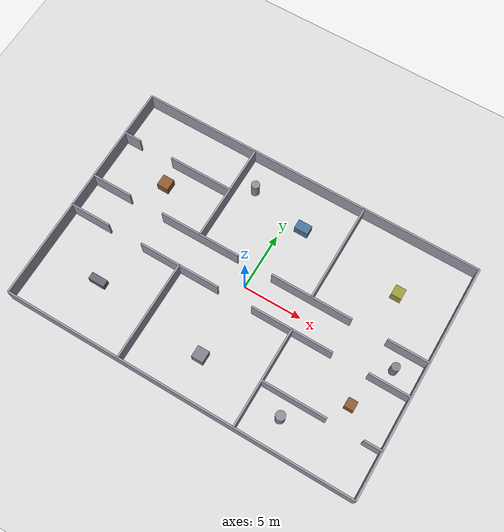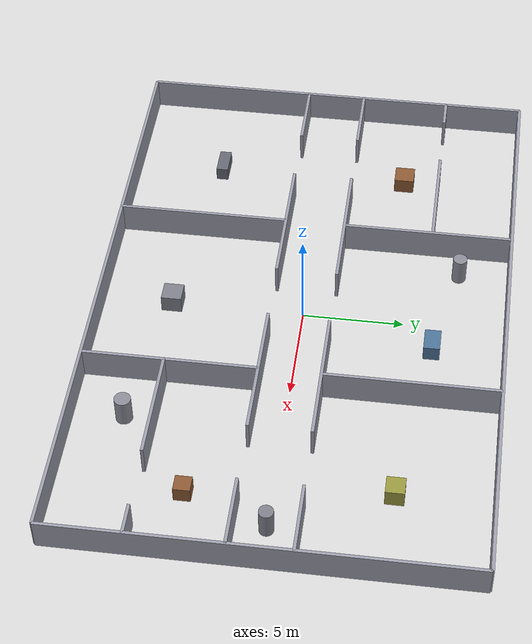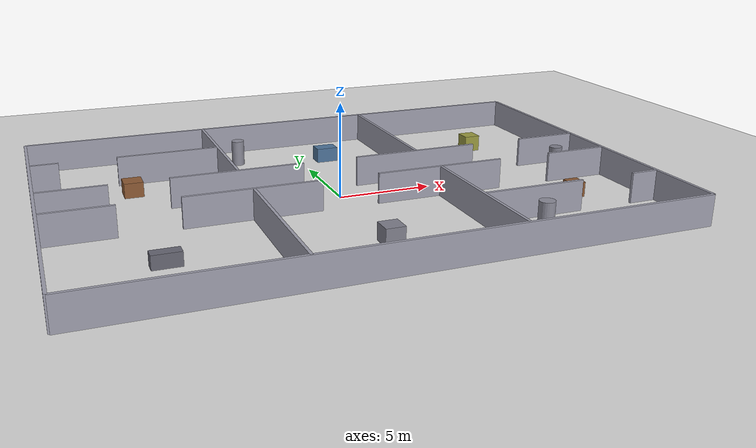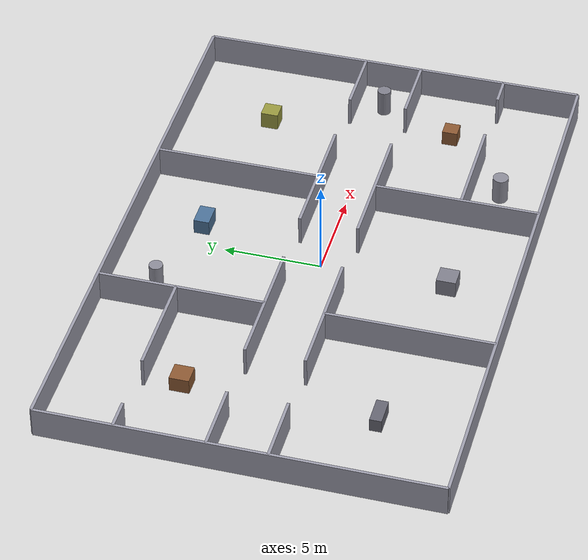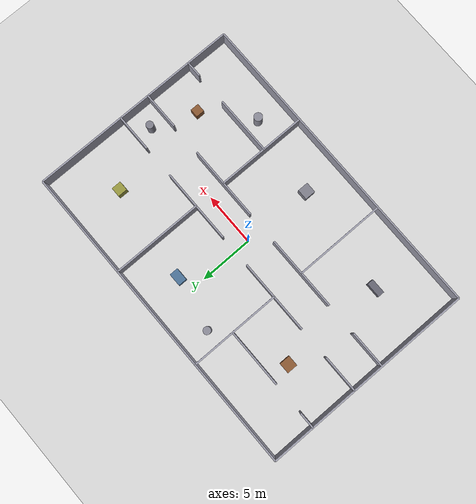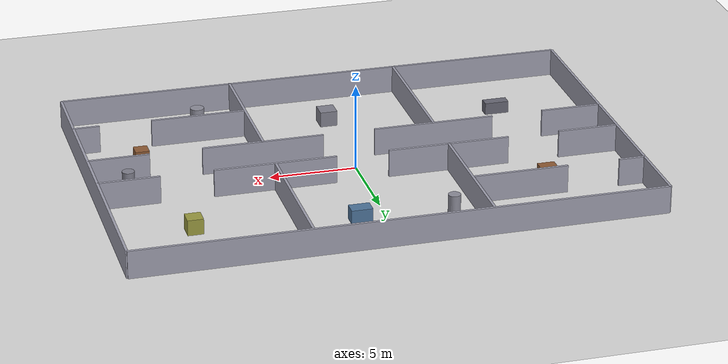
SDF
<?xml version="1.0" ?>
<sdf version="1.10">
  <world name="facility">
    <physics name="1ms" type="ignored"><max_step_size>0.002</max_step_size><real_time_factor>1.0</real_time_factor></physics>
    <plugin filename="gz-sim-physics-system"           name="gz::sim::systems::Physics"/>
    <plugin filename="gz-sim-sensors-system"           name="gz::sim::systems::Sensors"><render_engine>ogre2</render_engine></plugin>
    <plugin filename="gz-sim-scene-broadcaster-system" name="gz::sim::systems::SceneBroadcaster"/>
    <plugin filename="gz-sim-user-commands-system"     name="gz::sim::systems::UserCommands"/>
    <plugin filename="gz-sim-contact-system"           name="gz::sim::systems::Contact"/>
    <plugin filename="gz-sim-imu-system"               name="gz::sim::systems::Imu"/>

    <scene><ambient>0.45 0.45 0.45 1</ambient><background>0.7 0.7 0.8 1</background><grid>false</grid></scene>
    <light type="directional" name="sun"><cast_shadows>true</cast_shadows><pose>0 0 12 0 0 0</pose>
      <diffuse>0.9 0.9 0.9 1</diffuse><specular>0.2 0.2 0.2 1</specular><direction>-0.4 0.3 -0.9</direction></light>

    <model name="ground_plane"><static>true</static><link name="link">
      <collision name="c"><geometry><plane><normal>0 0 1</normal><size>120 120</size></plane></geometry></collision>
      <visual name="v"><geometry><plane><normal>0 0 1</normal><size>120 120</size></plane></geometry>
        <material><ambient>0.8 0.8 0.8 1</ambient><diffuse>0.85 0.85 0.85 1</diffuse></material></visual>
    </link></model>

    <model name="facility"><static>true</static><link name="structure">
        <collision name="w0_c"><pose>0 10 0.8 0 0 0</pose><geometry><box><size>30 0.15 1.6</size></box></geometry></collision>
        <visual name="w0_v"><pose>0 10 0.8 0 0 0</pose><geometry><box><size>30 0.15 1.6</size></box></geometry><material><ambient>0.62 0.62 0.68 1</ambient><diffuse>0.62 0.62 0.68 1</diffuse></material></visual>
        <collision name="w1_c"><pose>0 -10 0.8 0 0 0</pose><geometry><box><size>30 0.15 1.6</size></box></geometry></collision>
        <visual name="w1_v"><pose>0 -10 0.8 0 0 0</pose><geometry><box><size>30 0.15 1.6</size></box></geometry><material><ambient>0.62 0.62 0.68 1</ambient><diffuse>0.62 0.62 0.68 1</diffuse></material></visual>
        <collision name="w2_c"><pose>15 0 0.8 0 0 0</pose><geometry><box><size>0.15 20 1.6</size></box></geometry></collision>
        <visual name="w2_v"><pose>15 0 0.8 0 0 0</pose><geometry><box><size>0.15 20 1.6</size></box></geometry><material><ambient>0.62 0.62 0.68 1</ambient><diffuse>0.62 0.62 0.68 1</diffuse></material></visual>
        <collision name="w3_c"><pose>-15 0 0.8 0 0 0</pose><geometry><box><size>0.15 20 1.6</size></box></geometry></collision>
        <visual name="w3_v"><pose>-15 0 0.8 0 0 0</pose><geometry><box><size>0.15 20 1.6</size></box></geometry><material><ambient>0.62 0.62 0.68 1</ambient><diffuse>0.62 0.62 0.68 1</diffuse></material></visual>
        <collision name="w4_c"><pose>-13.25 1.5 0.8 0 0 0</pose><geometry><box><size>3.5 0.15 1.6</size></box></geometry></collision>
        <visual name="w4_v"><pose>-13.25 1.5 0.8 0 0 0</pose><geometry><box><size>3.5 0.15 1.6</size></box></geometry><material><ambient>0.62 0.62 0.68 1</ambient><diffuse>0.62 0.62 0.68 1</diffuse></material></visual>
        <collision name="w5_c"><pose>-5.0 1.5 0.8 0 0 0</pose><geometry><box><size>7.0 0.15 1.6</size></box></geometry></collision>
        <visual name="w5_v"><pose>-5.0 1.5 0.8 0 0 0</pose><geometry><box><size>7.0 0.15 1.6</size></box></geometry><material><ambient>0.62 0.62 0.68 1</ambient><diffuse>0.62 0.62 0.68 1</diffuse></material></visual>
        <collision name="w6_c"><pose>5.0 1.5 0.8 0 0 0</pose><geometry><box><size>7.0 0.15 1.6</size></box></geometry></collision>
        <visual name="w6_v"><pose>5.0 1.5 0.8 0 0 0</pose><geometry><box><size>7.0 0.15 1.6</size></box></geometry><material><ambient>0.62 0.62 0.68 1</ambient><diffuse>0.62 0.62 0.68 1</diffuse></material></visual>
        <collision name="w7_c"><pose>13.25 1.5 0.8 0 0 0</pose><geometry><box><size>3.5 0.15 1.6</size></box></geometry></collision>
        <visual name="w7_v"><pose>13.25 1.5 0.8 0 0 0</pose><geometry><box><size>3.5 0.15 1.6</size></box></geometry><material><ambient>0.62 0.62 0.68 1</ambient><diffuse>0.62 0.62 0.68 1</diffuse></material></visual>
        <collision name="w8_c"><pose>-13.25 -1.5 0.8 0 0 0</pose><geometry><box><size>3.5 0.15 1.6</size></box></geometry></collision>
        <visual name="w8_v"><pose>-13.25 -1.5 0.8 0 0 0</pose><geometry><box><size>3.5 0.15 1.6</size></box></geometry><material><ambient>0.62 0.62 0.68 1</ambient><diffuse>0.62 0.62 0.68 1</diffuse></material></visual>
        <collision name="w9_c"><pose>-5.0 -1.5 0.8 0 0 0</pose><geometry><box><size>7.0 0.15 1.6</size></box></geometry></collision>
        <visual name="w9_v"><pose>-5.0 -1.5 0.8 0 0 0</pose><geometry><box><size>7.0 0.15 1.6</size></box></geometry><material><ambient>0.62 0.62 0.68 1</ambient><diffuse>0.62 0.62 0.68 1</diffuse></material></visual>
        <collision name="w10_c"><pose>5.0 -1.5 0.8 0 0 0</pose><geometry><box><size>7.0 0.15 1.6</size></box></geometry></collision>
        <visual name="w10_v"><pose>5.0 -1.5 0.8 0 0 0</pose><geometry><box><size>7.0 0.15 1.6</size></box></geometry><material><ambient>0.62 0.62 0.68 1</ambient><diffuse>0.62 0.62 0.68 1</diffuse></material></visual>
        <collision name="w11_c"><pose>13.25 -1.5 0.8 0 0 0</pose><geometry><box><size>3.5 0.15 1.6</size></box></geometry></collision>
        <visual name="w11_v"><pose>13.25 -1.5 0.8 0 0 0</pose><geometry><box><size>3.5 0.15 1.6</size></box></geometry><material><ambient>0.62 0.62 0.68 1</ambient><diffuse>0.62 0.62 0.68 1</diffuse></material></visual>
        <collision name="w12_c"><pose>-5 5.75 0.8 0 0 0</pose><geometry><box><size>0.15 8.5 1.6</size></box></geometry></collision>
        <visual name="w12_v"><pose>-5 5.75 0.8 0 0 0</pose><geometry><box><size>0.15 8.5 1.6</size></box></geometry><material><ambient>0.62 0.62 0.68 1</ambient><diffuse>0.62 0.62 0.68 1</diffuse></material></visual>
        <collision name="w13_c"><pose>5 5.75 0.8 0 0 0</pose><geometry><box><size>0.15 8.5 1.6</size></box></geometry></collision>
        <visual name="w13_v"><pose>5 5.75 0.8 0 0 0</pose><geometry><box><size>0.15 8.5 1.6</size></box></geometry><material><ambient>0.62 0.62 0.68 1</ambient><diffuse>0.62 0.62 0.68 1</diffuse></material></visual>
        <collision name="w14_c"><pose>-5 -5.75 0.8 0 0 0</pose><geometry><box><size>0.15 8.5 1.6</size></box></geometry></collision>
        <visual name="w14_v"><pose>-5 -5.75 0.8 0 0 0</pose><geometry><box><size>0.15 8.5 1.6</size></box></geometry><material><ambient>0.62 0.62 0.68 1</ambient><diffuse>0.62 0.62 0.68 1</diffuse></material></visual>
        <collision name="w15_c"><pose>5 -5.75 0.8 0 0 0</pose><geometry><box><size>0.15 8.5 1.6</size></box></geometry></collision>
        <visual name="w15_v"><pose>5 -5.75 0.8 0 0 0</pose><geometry><box><size>0.15 8.5 1.6</size></box></geometry><material><ambient>0.62 0.62 0.68 1</ambient><diffuse>0.62 0.62 0.68 1</diffuse></material></visual>
        <collision name="w16_c"><pose>-14.25 6.0 0.8 0 0 0</pose><geometry><box><size>1.5 0.15 1.6</size></box></geometry></collision>
        <visual name="w16_v"><pose>-14.25 6.0 0.8 0 0 0</pose><geometry><box><size>1.5 0.15 1.6</size></box></geometry><material><ambient>0.62 0.62 0.68 1</ambient><diffuse>0.62 0.62 0.68 1</diffuse></material></visual>
        <collision name="w17_c"><pose>-7.75 6.0 0.8 0 0 0</pose><geometry><box><size>5.5 0.15 1.6</size></box></geometry></collision>
        <visual name="w17_v"><pose>-7.75 6.0 0.8 0 0 0</pose><geometry><box><size>5.5 0.15 1.6</size></box></geometry><material><ambient>0.62 0.62 0.68 1</ambient><diffuse>0.62 0.62 0.68 1</diffuse></material></visual>
        <collision name="w18_c"><pose>7.75 -6.0 0.8 0 0 0</pose><geometry><box><size>5.5 0.15 1.6</size></box></geometry></collision>
        <visual name="w18_v"><pose>7.75 -6.0 0.8 0 0 0</pose><geometry><box><size>5.5 0.15 1.6</size></box></geometry><material><ambient>0.62 0.62 0.68 1</ambient><diffuse>0.62 0.62 0.68 1</diffuse></material></visual>
        <collision name="w19_c"><pose>14.25 -6.0 0.8 0 0 0</pose><geometry><box><size>1.5 0.15 1.6</size></box></geometry></collision>
        <visual name="w19_v"><pose>14.25 -6.0 0.8 0 0 0</pose><geometry><box><size>1.5 0.15 1.6</size></box></geometry><material><ambient>0.62 0.62 0.68 1</ambient><diffuse>0.62 0.62 0.68 1</diffuse></material></visual>
        <collision name="o0_c"><pose>-10 4.2 0.4 0 0 0</pose><geometry><box><size>1.0 1.0 0.8</size></box></geometry></collision>
        <visual name="o0_v"><pose>-10 4.2 0.4 0 0 0</pose><geometry><box><size>1.0 1.0 0.8</size></box></geometry><material><ambient>0.55 0.35 0.2 1</ambient><diffuse>0.55 0.35 0.2 1</diffuse></material></visual>
        <collision name="o1_c"><pose>1.5 6.5 0.4 0 0 0</pose><geometry><box><size>1.2 0.8 0.8</size></box></geometry></collision>
        <visual name="o1_v"><pose>1.5 6.5 0.4 0 0 0</pose><geometry><box><size>1.2 0.8 0.8</size></box></geometry><material><ambient>0.3 0.45 0.6 1</ambient><diffuse>0.3 0.45 0.6 1</diffuse></material></visual>
        <collision name="o2_c"><pose>10.5 5.5 0.45 0 0 0</pose><geometry><box><size>0.9 0.9 0.9</size></box></geometry></collision>
        <visual name="o2_v"><pose>10.5 5.5 0.45 0 0 0</pose><geometry><box><size>0.9 0.9 0.9</size></box></geometry><material><ambient>0.6 0.6 0.25 1</ambient><diffuse>0.6 0.6 0.25 1</diffuse></material></visual>
        <collision name="o3_c"><pose>-10 -5.5 0.35 0 0 0</pose><geometry><box><size>1.4 0.6 0.7</size></box></geometry></collision>
        <visual name="o3_v"><pose>-10 -5.5 0.35 0 0 0</pose><geometry><box><size>1.4 0.6 0.7</size></box></geometry><material><ambient>0.4 0.4 0.45 1</ambient><diffuse>0.4 0.4 0.45 1</diffuse></material></visual>
        <collision name="o4_c"><pose>0.0 -6.5 0.45 0 0 0</pose><geometry><box><size>1.0 1.0 0.9</size></box></geometry></collision>
        <visual name="o4_v"><pose>0.0 -6.5 0.45 0 0 0</pose><geometry><box><size>1.0 1.0 0.9</size></box></geometry><material><ambient>0.5 0.5 0.55 1</ambient><diffuse>0.5 0.5 0.55 1</diffuse></material></visual>
        <collision name="o5_c"><pose>11.5 -4.0 0.4 0 0 0</pose><geometry><box><size>0.8 0.8 0.8</size></box></geometry></collision>
        <visual name="o5_v"><pose>11.5 -4.0 0.4 0 0 0</pose><geometry><box><size>0.8 0.8 0.8</size></box></geometry><material><ambient>0.55 0.35 0.2 1</ambient><diffuse>0.55 0.35 0.2 1</diffuse></material></visual>
        <collision name="p0_c"><pose>-3.5 7.5 0.7 0 0 0</pose><geometry><cylinder><radius>0.35</radius><length>1.4</length></cylinder></geometry></collision>
        <visual name="p0_v"><pose>-3.5 7.5 0.7 0 0 0</pose><geometry><cylinder><radius>0.35</radius><length>1.4</length></cylinder></geometry><material><ambient>0.55 0.55 0.6 1</ambient><diffuse>0.55 0.55 0.6 1</diffuse></material></visual>
        <collision name="p1_c"><pose>7.5 -7.5 0.7 0 0 0</pose><geometry><cylinder><radius>0.4</radius><length>1.4</length></cylinder></geometry></collision>
        <visual name="p1_v"><pose>7.5 -7.5 0.7 0 0 0</pose><geometry><cylinder><radius>0.4</radius><length>1.4</length></cylinder></geometry><material><ambient>0.55 0.55 0.6 1</ambient><diffuse>0.55 0.55 0.6 1</diffuse></material></visual>
        <collision name="p2_c"><pose>13.0 0.0 0.7 0 0 0</pose><geometry><cylinder><radius>0.35</radius><length>1.4</length></cylinder></geometry></collision>
        <visual name="p2_v"><pose>13.0 0.0 0.7 0 0 0</pose><geometry><cylinder><radius>0.35</radius><length>1.4</length></cylinder></geometry><material><ambient>0.5 0.5 0.55 1</ambient><diffuse>0.5 0.5 0.55 1</diffuse></material></visual>
    </link></model>

  </world>
</sdf>
